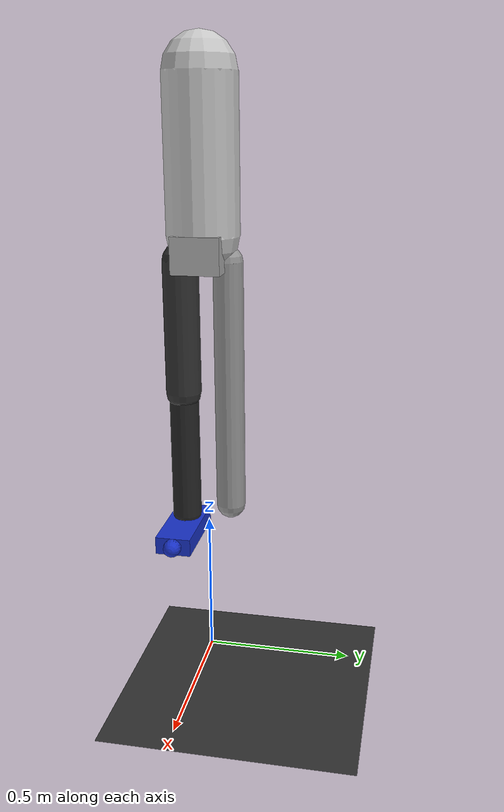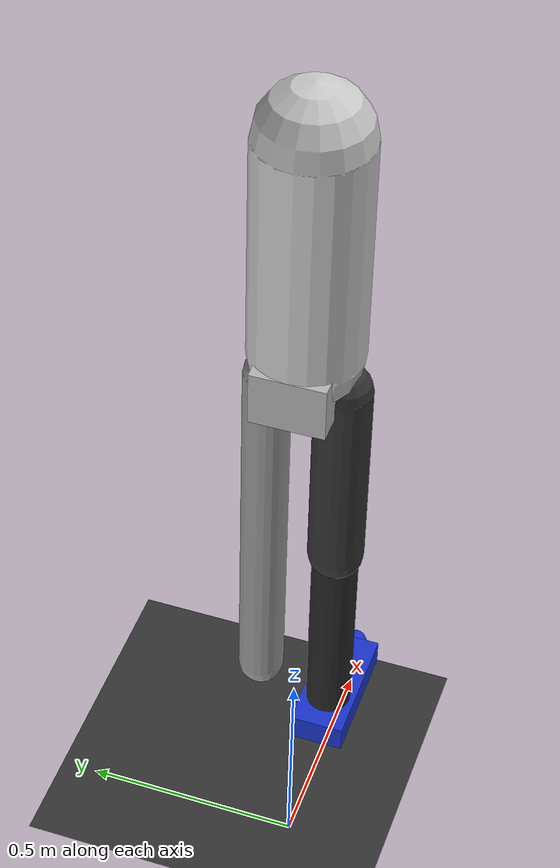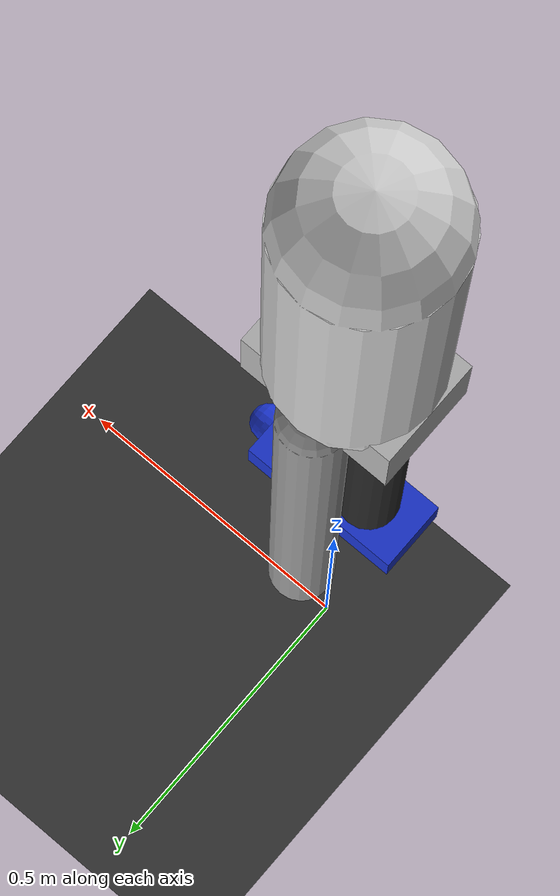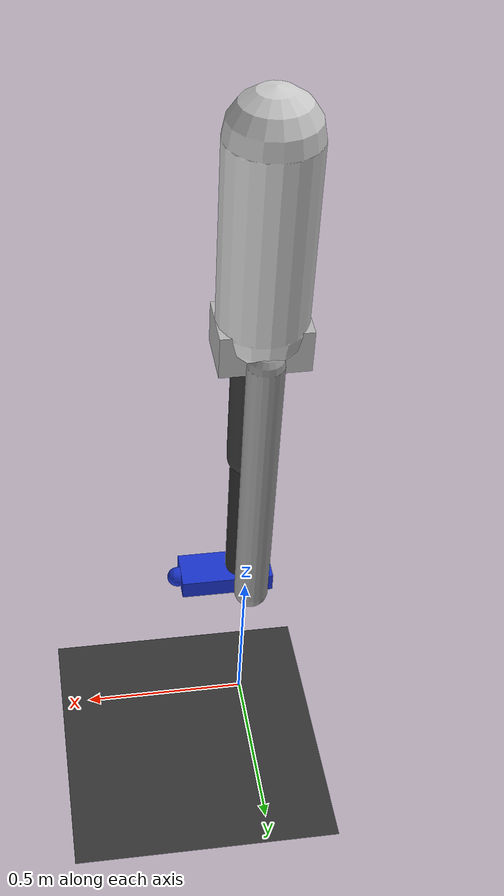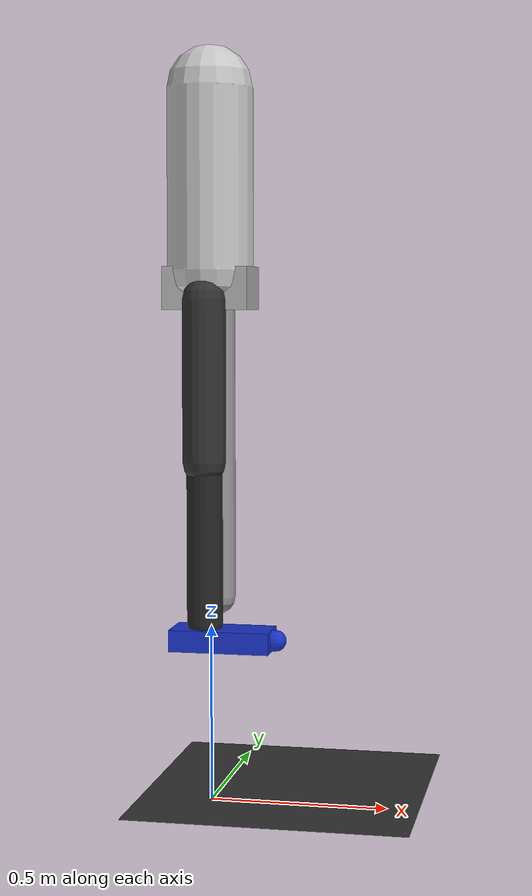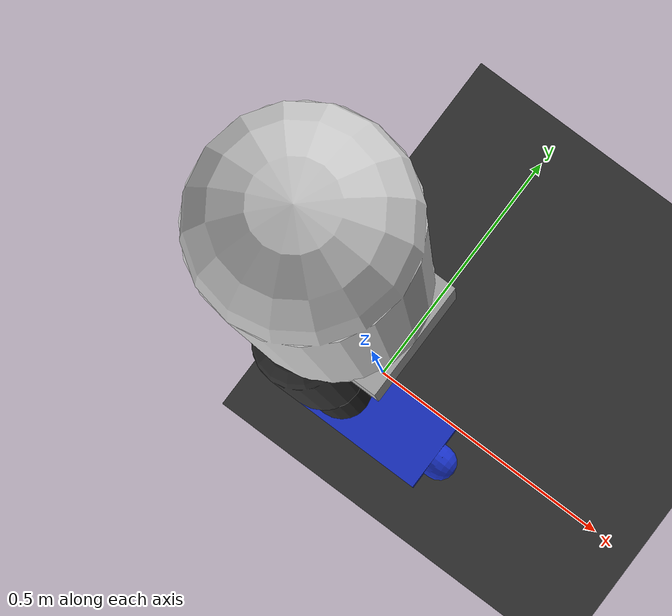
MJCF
<mujoco model="dummy_man_robot_leg">
  <compiler angle="radian"/>
  <option timestep="0.002" gravity="0 0 -9.81" integrator="RK4"/>
  <size njmax="2000" nconmax="200"/>

  <default>
    <geom friction="1.0 0.1 0.1" density="800" rgba="0.6 0.6 0.6 1"/>
    <joint damping="2" armature="0.01" limited="true"/>
  </default>

  <worldbody>
    <!-- ground -->
    <geom name="floor" type="plane" size="5 5 0.1" rgba="0.2 0.2 0.2 1"/>

    <!-- dummy human body -->
    <body name="dummy" pos="0 0 1.1">
      <!-- torso -->
      <geom name="torso" type="capsule" fromto="0 0 0.4  0 0 0.9" size="0.12" rgba="0.8 0.8 0.8 1"/>
      <!-- pelvis block -->
      <geom name="pelvis" type="box" pos="0 0 0.35" size="0.12 0.08 0.06" rgba="0.7 0.7 0.7 1"/>

      <!-- robot leg attached to pelvis -->
      <body name="robot_leg" pos="0 -0.08 0.32">
        <!-- hip joint -->
        <joint name="hip" type="hinge" axis="0 1 0" range="-1.4 0.6"/>
        <geom name="thigh" type="capsule" fromto="0 0 0  0 0 -0.45" size="0.06" rgba="0.2 0.2 0.2 1"/>

        <body name="shank" pos="0 0 -0.45">
          <joint name="knee" type="hinge" axis="0 1 0" range="-2.4 0.0"/>
          <geom name="shank_geom" type="capsule" fromto="0 0 0  0 0 -0.45" size="0.05" rgba="0.15 0.15 0.15 1"/>

          <body name="foot" pos="0 0 -0.45">
            <joint name="ankle" type="hinge" axis="0 1 0" range="-0.8 0.8"/>
            <!-- foot sole -->
            <geom name="sole" type="box" pos="0.05 0 -0.04" size="0.14 0.06 0.03" rgba="0.1 0.2 0.8 1"/>
            <!-- toe contact -->
            <geom name="toe" type="capsule" fromto="0.12 0 -0.04  0.20 0 -0.04" size="0.03" rgba="0.1 0.2 0.8 1"/>
          </body>
        </body>
      </body>

      <!-- optional: a passive “other leg” just for balance (very simple) -->
      <body name="other_leg" pos="0 0.08 0.32">
        <joint name="other_hip" type="hinge" axis="0 1 0" range="-0.5 0.5" damping="5"/>
        <geom type="capsule" fromto="0 0 0  0 0 -0.85" size="0.05" rgba="0.6 0.6 0.6 1"/>
      </body>
    </body>
  </worldbody>

  <actuator>
    <motor name="hip_motor" joint="hip" gear="80"/>
    <motor name="knee_motor" joint="knee" gear="120"/>
    <motor name="ankle_motor" joint="ankle" gear="60"/>
  </actuator>
</mujoco>
